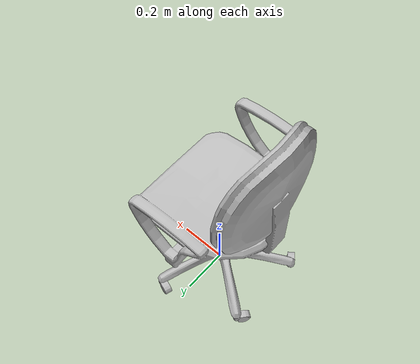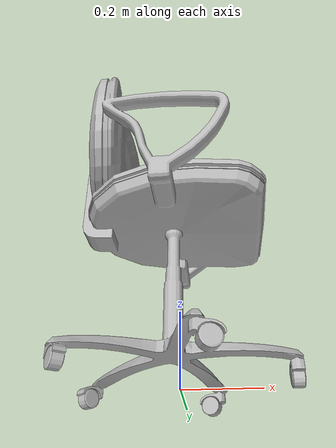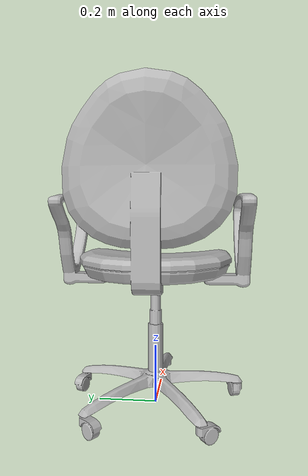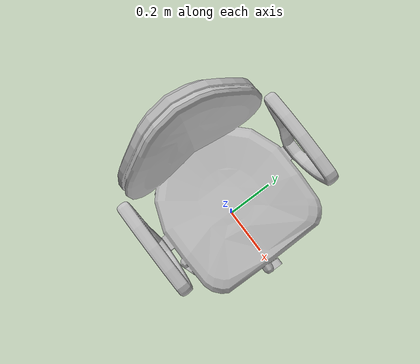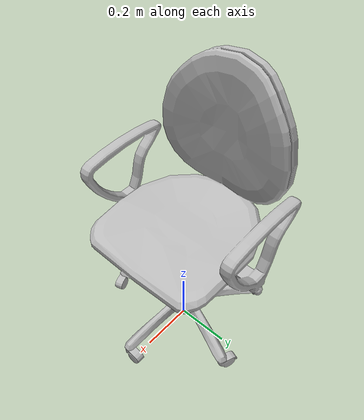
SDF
<?xml version='1.0'?>
<sdf version='1.4'>
  <model name='335'>
    <pose>0 0 0 0 0 0</pose>
    <static>true</static>
    <link name='link'>
      <collision name='collision'>
        <pose>0 0 0 0 0 0</pose>
        <geometry>
          <box>
            <size>0.599914 0.62 2</size>
          </box>
        </geometry>
      </collision>
      <visual name='visual'>
        <pose>0 0 0 0 0 0</pose>
        <geometry>
          <mesh><uri>model://335/335.dae</uri></mesh>
        </geometry>
      </visual>
    </link>
  </model>
</sdf>
